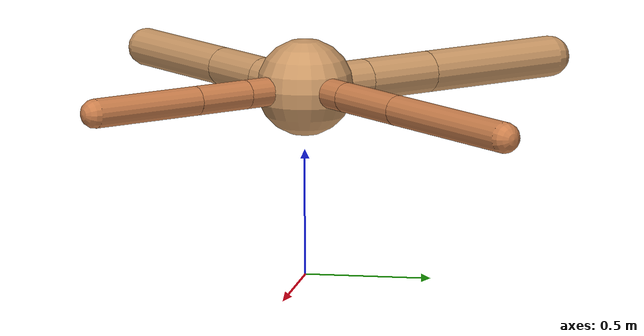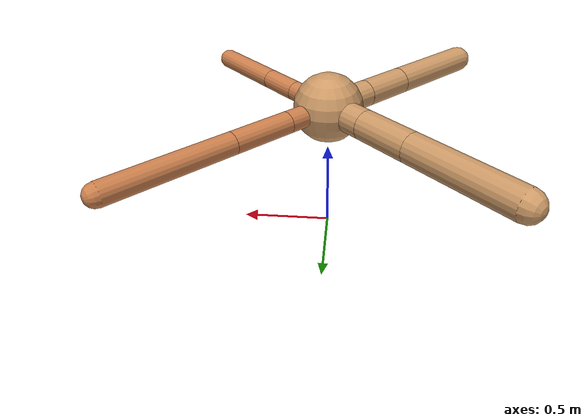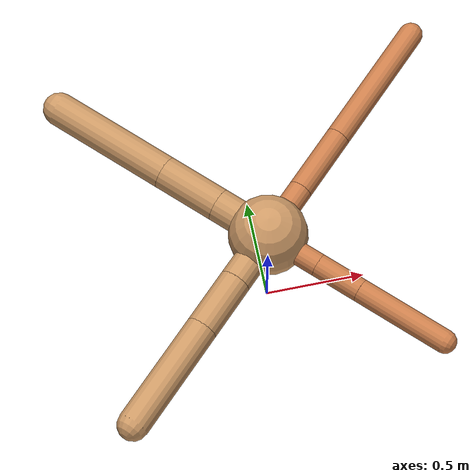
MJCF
<?xml version="1.0" ?>
<mujoco model="ant">

	<compiler angle="degree" coordinate="local" inertiafromgeom="true"/>

	<option integrator="RK4" timestep="0.01"/>

	<custom>

		<numeric data="0.0 0.0 0.55 1.0 0.0 0.0 0.0 0.0 1.0 0.0 -1.0 0.0 -1.0 0.0 1.0" name="init_qpos"/>

	</custom>

	<default>

		<joint armature="1" damping="1" limited="true"/>

		<geom conaffinity="0" condim="3" density="5.0" friction="1.5 0.1 0.1" margin="0.01" rgba="0.8 0.6 0.4 1"/>

	</default>

	<worldbody>

		<body name="torso" pos="0 0 0.75">

			<geom name="torso_geom" pos="0 0 0" size="0.19194967341739141" type="sphere"/>

			<!--joint armature="0" damping="0" limited="false" margin="0.01" name="root" pos="0 0 0" type="free"/-->

			<body name="front_left_leg" pos="0 0 0">

				<geom fromto="0 0 0 0.2 0.2 0" name="aux_1_geom" size="0.0593885621038126" type="capsule" rgba=".8 .5 .3 1"/>

				<body name="aux_1" pos="0.2 0.2 0">

					<joint axis="0 0 1" name="hip_1" pos="0.0 0.0 0.0" range="-40 40" type="hinge"/>

					<geom fromto="0 0 0 0.23723752457949981 0.23723752457949981 0" name="left_leg_geom" size="0.0593885621038126" type="capsule" rgba=".8 .5 .3 1"/>

					<body pos="0.23723752457949981 0.23723752457949981 0" name="front_left_foot">

						<joint axis="-1 1 0" name="ankle_1" pos="0.0 0.0 0.0" range="30 100" type="hinge"/>

						<geom fromto="0 0 0 0.47447504915899963 0.47447504915899963 0" name="left_ankle_geom" size="0.0593885621038126" type="capsule" rgba=".8 .5 .3 1"/>

					</body>

				</body>

			</body>

			<body name="front_right_leg" pos="0 0 0">

				<geom fromto="0 0 0 -0.2 0.2 0" name="aux_2_geom" size="0.08241787740998847" type="capsule"/>

				<body name="aux_2" pos="-0.2 0.2 0">

					<joint axis="0 0 1" name="hip_2" pos="0.0 0.0 0.0" range="-40 40" type="hinge"/>

					<geom fromto="0 0 0 -0.21853315784783944 0.21853315784783944 0" name="right_leg_geom" size="0.08241787740998847" type="capsule"/>

					<body pos="-0.21853315784783944 0.21853315784783944 0" name="front_right_foot">

						<joint axis="1 1 0" name="ankle_2" pos="0.0 0.0 0.0" range="-100 -30" type="hinge"/>

						<geom fromto="0 0 0 -0.4370663156956789 0.4370663156956789 0" name="right_ankle_geom" size="0.08241787740998847" type="capsule"/>

					</body>

				</body>

			</body>

			<body name="left_back_leg" pos="0 0 0">

				<geom fromto="0 0 0 -0.2 -0.2 0" name="aux_3_geom" size="0.07669040347244935" type="capsule"/>

				<body name="aux_3" pos="-0.2 -0.2 0">

					<joint axis="0 0 1" name="hip_3" pos="0.0 0.0 0.0" range="-40 40" type="hinge"/>

					<geom fromto="0 0 0 -0.19932126690546106 -0.19932126690546106 0" name="back_leg_geom" size="0.07669040347244935" type="capsule"/>

					<body pos="-0.19932126690546106 -0.19932126690546106 0" name="left_back_foot">

						<joint axis="-1 1 0" name="ankle_3" pos="0.0 0.0 0.0" range="-100 -30" type="hinge"/>

						<geom fromto="0 0 0 -0.39864253381092213 -0.39864253381092213 0" name="third_ankle_geom" size="0.07669040347244935" type="capsule"/>

					</body>

				</body>

			</body>

			<body name="right_back_leg" pos="0 0 0">

				<geom fromto="0 0 0 0.2 -0.2 0" name="aux_4_geom" size="0.056976931382410535" type="capsule" rgba=".8 .5 .3 1"/>

				<body name="aux_4" pos="0.2 -0.2 0">

					<joint axis="0 0 1" name="hip_4" pos="0.0 0.0 0.0" range="-40 40" type="hinge"/>

					<geom fromto="0 0 0 0.16401195919911105 -0.16401195919911105 0" name="rightback_leg_geom" size="0.056976931382410535" type="capsule" rgba=".8 .5 .3 1"/>

					<body pos="0.16401195919911105 -0.16401195919911105 0" name="right_back_foot">

						<joint axis="1 1 0" name="ankle_4" pos="0.0 0.0 0.0" range="30 100" type="hinge"/>

						<geom fromto="0 0 0 0.3280239183982221 -0.3280239183982221 0" name="fourth_ankle_geom" size="0.056976931382410535" type="capsule" rgba=".8 .5 .3 1"/>

					</body>

				</body>

			</body>

		</body>

	</worldbody>

	<actuator>

		<motor ctrllimited="true" ctrlrange="-1.0 1.0" joint="hip_4" gear="150"/>

		<motor ctrllimited="true" ctrlrange="-1.0 1.0" joint="ankle_4" gear="150"/>

		<motor ctrllimited="true" ctrlrange="-1.0 1.0" joint="hip_1" gear="150"/>

		<motor ctrllimited="true" ctrlrange="-1.0 1.0" joint="ankle_1" gear="150"/>

		<motor ctrllimited="true" ctrlrange="-1.0 1.0" joint="hip_2" gear="150"/>

		<motor ctrllimited="true" ctrlrange="-1.0 1.0" joint="ankle_2" gear="150"/>

		<motor ctrllimited="true" ctrlrange="-1.0 1.0" joint="hip_3" gear="150"/>

		<motor ctrllimited="true" ctrlrange="-1.0 1.0" joint="ankle_3" gear="150"/>

	</actuator>

</mujoco>
